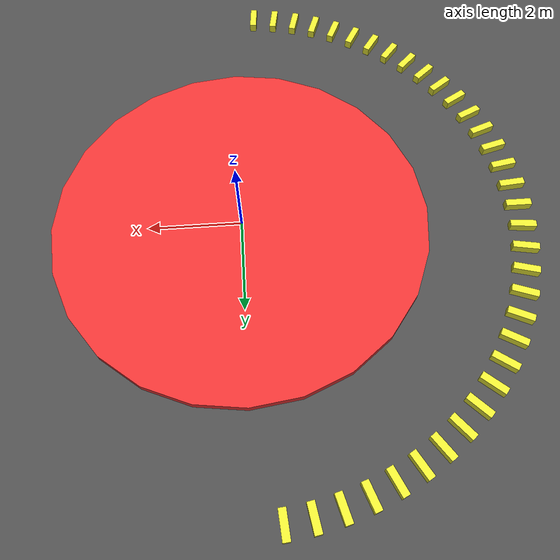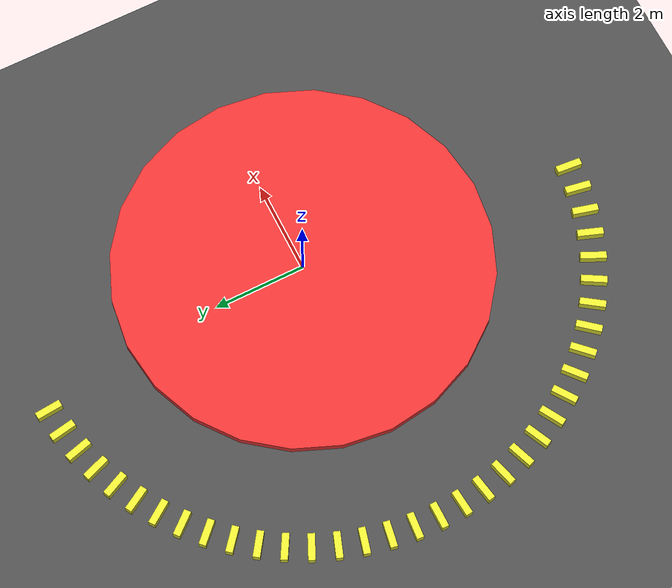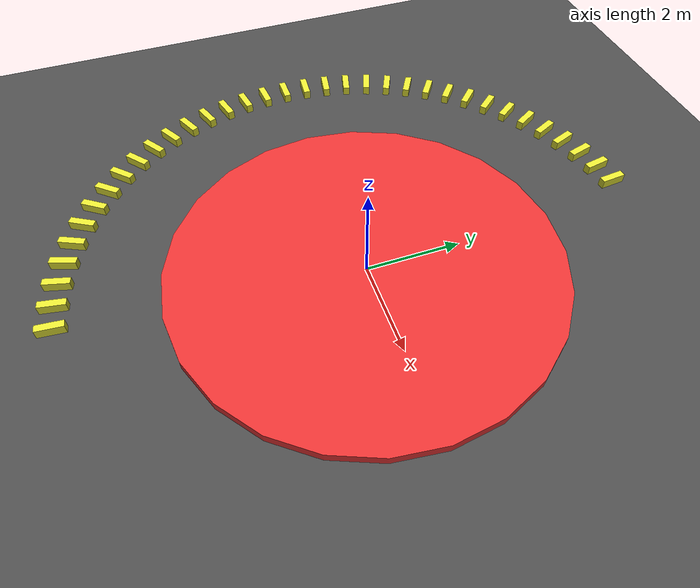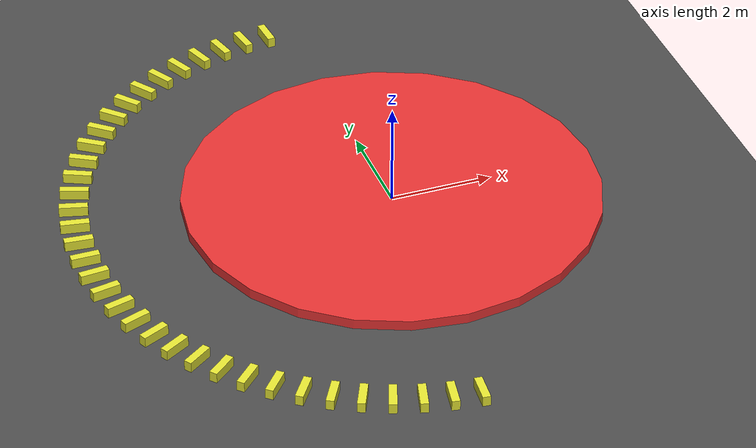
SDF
<sdf version="1.9">
 <world name="oval_track">
  <model name="ground_plane">
   <static>true</static>
   <link name="link">
    <collision name="collision">
     <geometry><plane><normal>0 0 1</normal><size>50 50</size></plane></geometry>
    </collision>
    <visual name="visual">
     <geometry><plane><normal>0 0 1</normal><size>50 50</size></plane></geometry>
     <material><ambient>0.3 0.3 0.3 1</ambient><diffuse>0.3 0.3 0.3 1</diffuse></material>
    </visual>
   </link>
  </model>
  <model name="inner_wall">
   <static>true</static>
   <link name="link">
    <collision name="collision">
     <pose>0 0 0.1 0 0 0</pose>
     <geometry><cylinder><radius>4.0</radius><length>0.2</length></cylinder></geometry>
    </collision>
    <visual name="visual">
     <pose>0 0 0.1 0 0 0</pose>
     <geometry><cylinder><radius>4.0</radius><length>0.2</length></cylinder></geometry>
     <material><ambient>0.9 0.2 0.2 1</ambient><diffuse>0.9 0.2 0.2 1</diffuse></material>
    </visual>
   </link>
  </model>
  <model name="outer_wall_seg_19">
   <static>true</static>
   <pose>-0.5229 5.9772 0.1 0 0 3.2289</pose>
   <link name="l">
    <collision name="c"><geometry><box><size>0.15 0.550 0.2</size></box></geometry></collision>
    <visual name="v">
     <geometry><box><size>0.15 0.550 0.2</size></box></geometry>
     <material><ambient>0.9 0.9 0.2 1</ambient><diffuse>0.9 0.9 0.2 1</diffuse></material>
    </visual>
   </link>
  </model>
  <model name="outer_wall_seg_20">
   <static>true</static>
   <pose>-1.0419 5.9088 0.1 0 0 3.3161</pose>
   <link name="l">
    <collision name="c"><geometry><box><size>0.15 0.550 0.2</size></box></geometry></collision>
    <visual name="v">
     <geometry><box><size>0.15 0.550 0.2</size></box></geometry>
     <material><ambient>0.9 0.9 0.2 1</ambient><diffuse>0.9 0.9 0.2 1</diffuse></material>
    </visual>
   </link>
  </model>
  <model name="outer_wall_seg_21">
   <static>true</static>
   <pose>-1.5529 5.7956 0.1 0 0 3.4034</pose>
   <link name="l">
    <collision name="c"><geometry><box><size>0.15 0.550 0.2</size></box></geometry></collision>
    <visual name="v">
     <geometry><box><size>0.15 0.550 0.2</size></box></geometry>
     <material><ambient>0.9 0.9 0.2 1</ambient><diffuse>0.9 0.9 0.2 1</diffuse></material>
    </visual>
   </link>
  </model>
  <model name="outer_wall_seg_22">
   <static>true</static>
   <pose>-2.0521 5.6382 0.1 0 0 3.4907</pose>
   <link name="l">
    <collision name="c"><geometry><box><size>0.15 0.550 0.2</size></box></geometry></collision>
    <visual name="v">
     <geometry><box><size>0.15 0.550 0.2</size></box></geometry>
     <material><ambient>0.9 0.9 0.2 1</ambient><diffuse>0.9 0.9 0.2 1</diffuse></material>
    </visual>
   </link>
  </model>
  <model name="outer_wall_seg_23">
   <static>true</static>
   <pose>-2.5357 5.4378 0.1 0 0 3.5779</pose>
   <link name="l">
    <collision name="c"><geometry><box><size>0.15 0.550 0.2</size></box></geometry></collision>
    <visual name="v">
     <geometry><box><size>0.15 0.550 0.2</size></box></geometry>
     <material><ambient>0.9 0.9 0.2 1</ambient><diffuse>0.9 0.9 0.2 1</diffuse></material>
    </visual>
   </link>
  </model>
  <model name="outer_wall_seg_24">
   <static>true</static>
   <pose>-3.0000 5.1962 0.1 0 0 3.6652</pose>
   <link name="l">
    <collision name="c"><geometry><box><size>0.15 0.550 0.2</size></box></geometry></collision>
    <visual name="v">
     <geometry><box><size>0.15 0.550 0.2</size></box></geometry>
     <material><ambient>0.9 0.9 0.2 1</ambient><diffuse>0.9 0.9 0.2 1</diffuse></material>
    </visual>
   </link>
  </model>
  <model name="outer_wall_seg_25">
   <static>true</static>
   <pose>-3.4415 4.9149 0.1 0 0 3.7525</pose>
   <link name="l">
    <collision name="c"><geometry><box><size>0.15 0.550 0.2</size></box></geometry></collision>
    <visual name="v">
     <geometry><box><size>0.15 0.550 0.2</size></box></geometry>
     <material><ambient>0.9 0.9 0.2 1</ambient><diffuse>0.9 0.9 0.2 1</diffuse></material>
    </visual>
   </link>
  </model>
  <model name="outer_wall_seg_26">
   <static>true</static>
   <pose>-3.8567 4.5963 0.1 0 0 3.8397</pose>
   <link name="l">
    <collision name="c"><geometry><box><size>0.15 0.550 0.2</size></box></geometry></collision>
    <visual name="v">
     <geometry><box><size>0.15 0.550 0.2</size></box></geometry>
     <material><ambient>0.9 0.9 0.2 1</ambient><diffuse>0.9 0.9 0.2 1</diffuse></material>
    </visual>
   </link>
  </model>
  <model name="outer_wall_seg_27">
   <static>true</static>
   <pose>-4.2426 4.2426 0.1 0 0 3.9270</pose>
   <link name="l">
    <collision name="c"><geometry><box><size>0.15 0.550 0.2</size></box></geometry></collision>
    <visual name="v">
     <geometry><box><size>0.15 0.550 0.2</size></box></geometry>
     <material><ambient>0.9 0.9 0.2 1</ambient><diffuse>0.9 0.9 0.2 1</diffuse></material>
    </visual>
   </link>
  </model>
  <model name="outer_wall_seg_28">
   <static>true</static>
   <pose>-4.5963 3.8567 0.1 0 0 4.0143</pose>
   <link name="l">
    <collision name="c"><geometry><box><size>0.15 0.550 0.2</size></box></geometry></collision>
    <visual name="v">
     <geometry><box><size>0.15 0.550 0.2</size></box></geometry>
     <material><ambient>0.9 0.9 0.2 1</ambient><diffuse>0.9 0.9 0.2 1</diffuse></material>
    </visual>
   </link>
  </model>
  <model name="outer_wall_seg_29">
   <static>true</static>
   <pose>-4.9149 3.4415 0.1 0 0 4.1015</pose>
   <link name="l">
    <collision name="c"><geometry><box><size>0.15 0.550 0.2</size></box></geometry></collision>
    <visual name="v">
     <geometry><box><size>0.15 0.550 0.2</size></box></geometry>
     <material><ambient>0.9 0.9 0.2 1</ambient><diffuse>0.9 0.9 0.2 1</diffuse></material>
    </visual>
   </link>
  </model>
  <model name="outer_wall_seg_30">
   <static>true</static>
   <pose>-5.1962 3.0000 0.1 0 0 4.1888</pose>
   <link name="l">
    <collision name="c"><geometry><box><size>0.15 0.550 0.2</size></box></geometry></collision>
    <visual name="v">
     <geometry><box><size>0.15 0.550 0.2</size></box></geometry>
     <material><ambient>0.9 0.9 0.2 1</ambient><diffuse>0.9 0.9 0.2 1</diffuse></material>
    </visual>
   </link>
  </model>
  <model name="outer_wall_seg_31">
   <static>true</static>
   <pose>-5.4378 2.5357 0.1 0 0 4.2761</pose>
   <link name="l">
    <collision name="c"><geometry><box><size>0.15 0.550 0.2</size></box></geometry></collision>
    <visual name="v">
     <geometry><box><size>0.15 0.550 0.2</size></box></geometry>
     <material><ambient>0.9 0.9 0.2 1</ambient><diffuse>0.9 0.9 0.2 1</diffuse></material>
    </visual>
   </link>
  </model>
  <model name="outer_wall_seg_32">
   <static>true</static>
   <pose>-5.6382 2.0521 0.1 0 0 4.3633</pose>
   <link name="l">
    <collision name="c"><geometry><box><size>0.15 0.550 0.2</size></box></geometry></collision>
    <visual name="v">
     <geometry><box><size>0.15 0.550 0.2</size></box></geometry>
     <material><ambient>0.9 0.9 0.2 1</ambient><diffuse>0.9 0.9 0.2 1</diffuse></material>
    </visual>
   </link>
  </model>
  <model name="outer_wall_seg_33">
   <static>true</static>
   <pose>-5.7956 1.5529 0.1 0 0 4.4506</pose>
   <link name="l">
    <collision name="c"><geometry><box><size>0.15 0.550 0.2</size></box></geometry></collision>
    <visual name="v">
     <geometry><box><size>0.15 0.550 0.2</size></box></geometry>
     <material><ambient>0.9 0.9 0.2 1</ambient><diffuse>0.9 0.9 0.2 1</diffuse></material>
    </visual>
   </link>
  </model>
  <model name="outer_wall_seg_34">
   <static>true</static>
   <pose>-5.9088 1.0419 0.1 0 0 4.5379</pose>
   <link name="l">
    <collision name="c"><geometry><box><size>0.15 0.550 0.2</size></box></geometry></collision>
    <visual name="v">
     <geometry><box><size>0.15 0.550 0.2</size></box></geometry>
     <material><ambient>0.9 0.9 0.2 1</ambient><diffuse>0.9 0.9 0.2 1</diffuse></material>
    </visual>
   </link>
  </model>
  <model name="outer_wall_seg_35">
   <static>true</static>
   <pose>-5.9772 0.5229 0.1 0 0 4.6251</pose>
   <link name="l">
    <collision name="c"><geometry><box><size>0.15 0.550 0.2</size></box></geometry></collision>
    <visual name="v">
     <geometry><box><size>0.15 0.550 0.2</size></box></geometry>
     <material><ambient>0.9 0.9 0.2 1</ambient><diffuse>0.9 0.9 0.2 1</diffuse></material>
    </visual>
   </link>
  </model>
  <model name="outer_wall_seg_36">
   <static>true</static>
   <pose>-6.0000 0.0000 0.1 0 0 4.7124</pose>
   <link name="l">
    <collision name="c"><geometry><box><size>0.15 0.550 0.2</size></box></geometry></collision>
    <visual name="v">
     <geometry><box><size>0.15 0.550 0.2</size></box></geometry>
     <material><ambient>0.9 0.9 0.2 1</ambient><diffuse>0.9 0.9 0.2 1</diffuse></material>
    </visual>
   </link>
  </model>
  <model name="outer_wall_seg_37">
   <static>true</static>
   <pose>-5.9772 -0.5229 0.1 0 0 4.7997</pose>
   <link name="l">
    <collision name="c"><geometry><box><size>0.15 0.550 0.2</size></box></geometry></collision>
    <visual name="v">
     <geometry><box><size>0.15 0.550 0.2</size></box></geometry>
     <material><ambient>0.9 0.9 0.2 1</ambient><diffuse>0.9 0.9 0.2 1</diffuse></material>
    </visual>
   </link>
  </model>
  <model name="outer_wall_seg_38">
   <static>true</static>
   <pose>-5.9088 -1.0419 0.1 0 0 4.8869</pose>
   <link name="l">
    <collision name="c"><geometry><box><size>0.15 0.550 0.2</size></box></geometry></collision>
    <visual name="v">
     <geometry><box><size>0.15 0.550 0.2</size></box></geometry>
     <material><ambient>0.9 0.9 0.2 1</ambient><diffuse>0.9 0.9 0.2 1</diffuse></material>
    </visual>
   </link>
  </model>
  <model name="outer_wall_seg_39">
   <static>true</static>
   <pose>-5.7956 -1.5529 0.1 0 0 4.9742</pose>
   <link name="l">
    <collision name="c"><geometry><box><size>0.15 0.550 0.2</size></box></geometry></collision>
    <visual name="v">
     <geometry><box><size>0.15 0.550 0.2</size></box></geometry>
     <material><ambient>0.9 0.9 0.2 1</ambient><diffuse>0.9 0.9 0.2 1</diffuse></material>
    </visual>
   </link>
  </model>
  <model name="outer_wall_seg_40">
   <static>true</static>
   <pose>-5.6382 -2.0521 0.1 0 0 5.0615</pose>
   <link name="l">
    <collision name="c"><geometry><box><size>0.15 0.550 0.2</size></box></geometry></collision>
    <visual name="v">
     <geometry><box><size>0.15 0.550 0.2</size></box></geometry>
     <material><ambient>0.9 0.9 0.2 1</ambient><diffuse>0.9 0.9 0.2 1</diffuse></material>
    </visual>
   </link>
  </model>
  <model name="outer_wall_seg_41">
   <static>true</static>
   <pose>-5.4378 -2.5357 0.1 0 0 5.1487</pose>
   <link name="l">
    <collision name="c"><geometry><box><size>0.15 0.550 0.2</size></box></geometry></collision>
    <visual name="v">
     <geometry><box><size>0.15 0.550 0.2</size></box></geometry>
     <material><ambient>0.9 0.9 0.2 1</ambient><diffuse>0.9 0.9 0.2 1</diffuse></material>
    </visual>
   </link>
  </model>
  <model name="outer_wall_seg_42">
   <static>true</static>
   <pose>-5.1962 -3.0000 0.1 0 0 5.2360</pose>
   <link name="l">
    <collision name="c"><geometry><box><size>0.15 0.550 0.2</size></box></geometry></collision>
    <visual name="v">
     <geometry><box><size>0.15 0.550 0.2</size></box></geometry>
     <material><ambient>0.9 0.9 0.2 1</ambient><diffuse>0.9 0.9 0.2 1</diffuse></material>
    </visual>
   </link>
  </model>
  <model name="outer_wall_seg_43">
   <static>true</static>
   <pose>-4.9149 -3.4415 0.1 0 0 5.3233</pose>
   <link name="l">
    <collision name="c"><geometry><box><size>0.15 0.550 0.2</size></box></geometry></collision>
    <visual name="v">
     <geometry><box><size>0.15 0.550 0.2</size></box></geometry>
     <material><ambient>0.9 0.9 0.2 1</ambient><diffuse>0.9 0.9 0.2 1</diffuse></material>
    </visual>
   </link>
  </model>
  <model name="outer_wall_seg_44">
   <static>true</static>
   <pose>-4.5963 -3.8567 0.1 0 0 5.4105</pose>
   <link name="l">
    <collision name="c"><geometry><box><size>0.15 0.550 0.2</size></box></geometry></collision>
    <visual name="v">
     <geometry><box><size>0.15 0.550 0.2</size></box></geometry>
     <material><ambient>0.9 0.9 0.2 1</ambient><diffuse>0.9 0.9 0.2 1</diffuse></material>
    </visual>
   </link>
  </model>
  <model name="outer_wall_seg_45">
   <static>true</static>
   <pose>-4.2426 -4.2426 0.1 0 0 5.4978</pose>
   <link name="l">
    <collision name="c"><geometry><box><size>0.15 0.550 0.2</size></box></geometry></collision>
    <visual name="v">
     <geometry><box><size>0.15 0.550 0.2</size></box></geometry>
     <material><ambient>0.9 0.9 0.2 1</ambient><diffuse>0.9 0.9 0.2 1</diffuse></material>
    </visual>
   </link>
  </model>
  <model name="outer_wall_seg_46">
   <static>true</static>
   <pose>-3.8567 -4.5963 0.1 0 0 5.5851</pose>
   <link name="l">
    <collision name="c"><geometry><box><size>0.15 0.550 0.2</size></box></geometry></collision>
    <visual name="v">
     <geometry><box><size>0.15 0.550 0.2</size></box></geometry>
     <material><ambient>0.9 0.9 0.2 1</ambient><diffuse>0.9 0.9 0.2 1</diffuse></material>
    </visual>
   </link>
  </model>
  <model name="outer_wall_seg_47">
   <static>true</static>
   <pose>-3.4415 -4.9149 0.1 0 0 5.6723</pose>
   <link name="l">
    <collision name="c"><geometry><box><size>0.15 0.550 0.2</size></box></geometry></collision>
    <visual name="v">
     <geometry><box><size>0.15 0.550 0.2</size></box></geometry>
     <material><ambient>0.9 0.9 0.2 1</ambient><diffuse>0.9 0.9 0.2 1</diffuse></material>
    </visual>
   </link>
  </model>
  <model name="outer_wall_seg_48">
   <static>true</static>
   <pose>-3.0000 -5.1962 0.1 0 0 5.7596</pose>
   <link name="l">
    <collision name="c"><geometry><box><size>0.15 0.550 0.2</size></box></geometry></collision>
    <visual name="v">
     <geometry><box><size>0.15 0.550 0.2</size></box></geometry>
     <material><ambient>0.9 0.9 0.2 1</ambient><diffuse>0.9 0.9 0.2 1</diffuse></material>
    </visual>
   </link>
  </model>
  <model name="outer_wall_seg_49">
   <static>true</static>
   <pose>-2.5357 -5.4378 0.1 0 0 5.8469</pose>
   <link name="l">
    <collision name="c"><geometry><box><size>0.15 0.550 0.2</size></box></geometry></collision>
    <visual name="v">
     <geometry><box><size>0.15 0.550 0.2</size></box></geometry>
     <material><ambient>0.9 0.9 0.2 1</ambient><diffuse>0.9 0.9 0.2 1</diffuse></material>
    </visual>
   </link>
  </model>
  <model name="outer_wall_seg_50">
   <static>true</static>
   <pose>-2.0521 -5.6382 0.1 0 0 5.9341</pose>
   <link name="l">
    <collision name="c"><geometry><box><size>0.15 0.550 0.2</size></box></geometry></collision>
    <visual name="v">
     <geometry><box><size>0.15 0.550 0.2</size></box></geometry>
     <material><ambient>0.9 0.9 0.2 1</ambient><diffuse>0.9 0.9 0.2 1</diffuse></material>
    </visual>
   </link>
  </model>
  <model name="outer_wall_seg_51">
   <static>true</static>
   <pose>-1.5529 -5.7956 0.1 0 0 6.0214</pose>
   <link name="l">
    <collision name="c"><geometry><box><size>0.15 0.550 0.2</size></box></geometry></collision>
    <visual name="v">
     <geometry><box><size>0.15 0.550 0.2</size></box></geometry>
     <material><ambient>0.9 0.9 0.2 1</ambient><diffuse>0.9 0.9 0.2 1</diffuse></material>
    </visual>
   </link>
  </model>
  <model name="outer_wall_seg_52">
   <static>true</static>
   <pose>-1.0419 -5.9088 0.1 0 0 6.1087</pose>
   <link name="l">
    <collision name="c"><geometry><box><size>0.15 0.550 0.2</size></box></geometry></collision>
    <visual name="v">
     <geometry><box><size>0.15 0.550 0.2</size></box></geometry>
     <material><ambient>0.9 0.9 0.2 1</ambient><diffuse>0.9 0.9 0.2 1</diffuse></material>
    </visual>
   </link>
  </model>
  <model name="outer_wall_seg_53">
   <static>true</static>
   <pose>-0.5229 -5.9772 0.1 0 0 6.1959</pose>
   <link name="l">
    <collision name="c"><geometry><box><size>0.15 0.550 0.2</size></box></geometry></collision>
    <visual name="v">
     <geometry><box><size>0.15 0.550 0.2</size></box></geometry>
     <material><ambient>0.9 0.9 0.2 1</ambient><diffuse>0.9 0.9 0.2 1</diffuse></material>
    </visual>
   </link>
  </model>
 </world>
</sdf>
